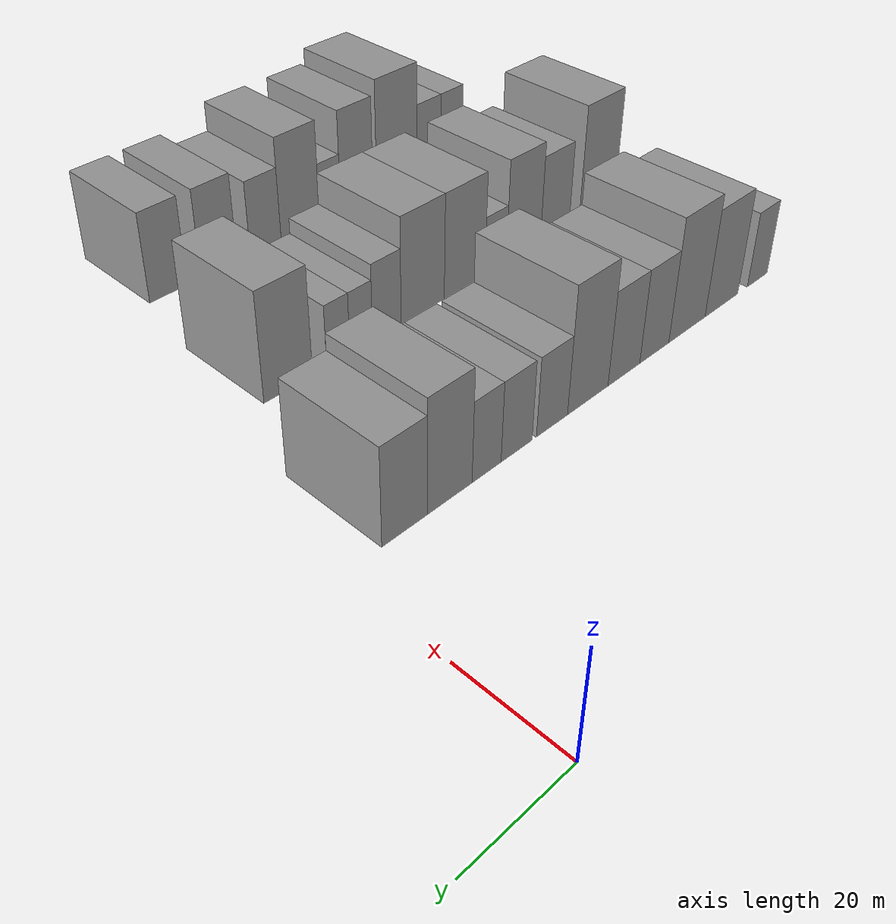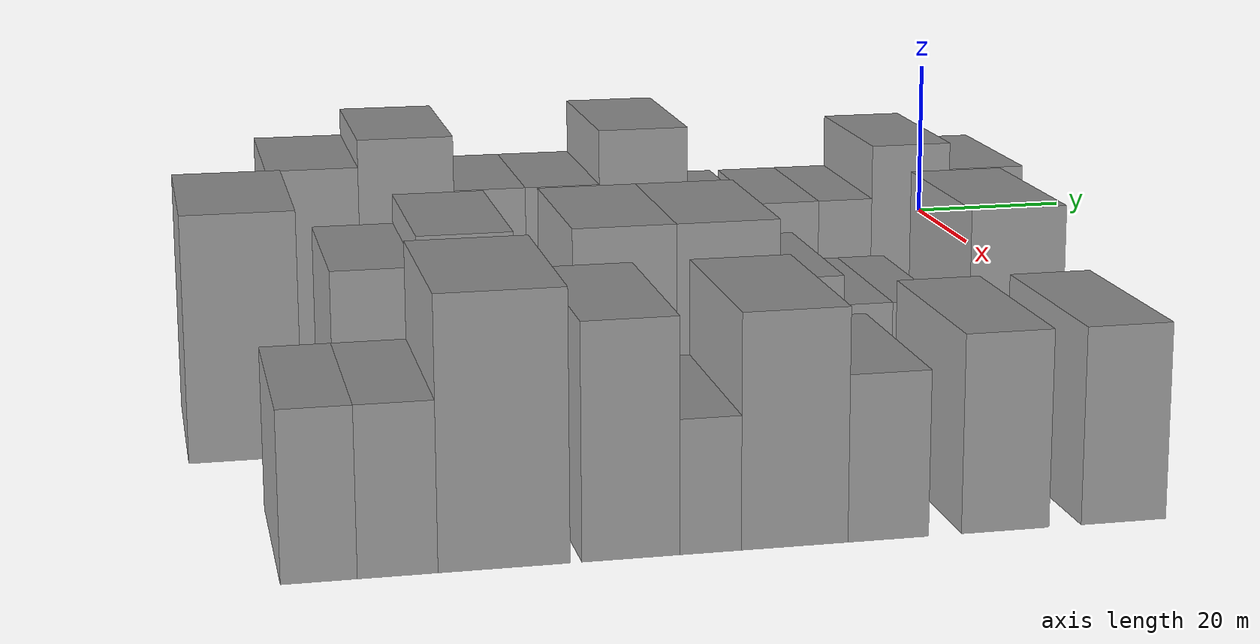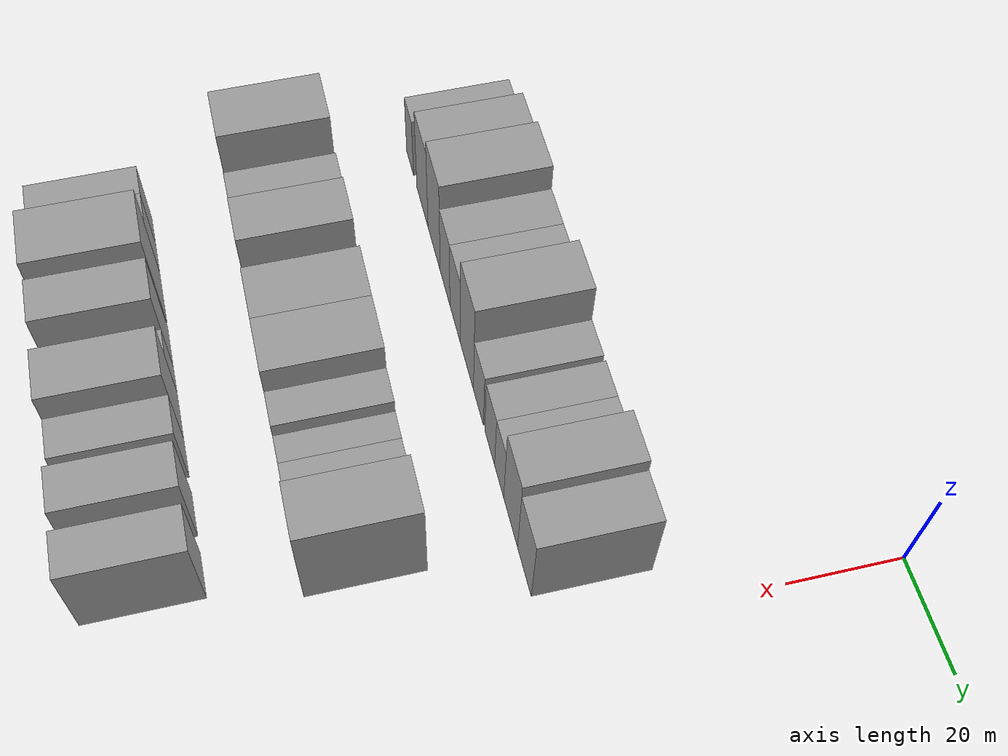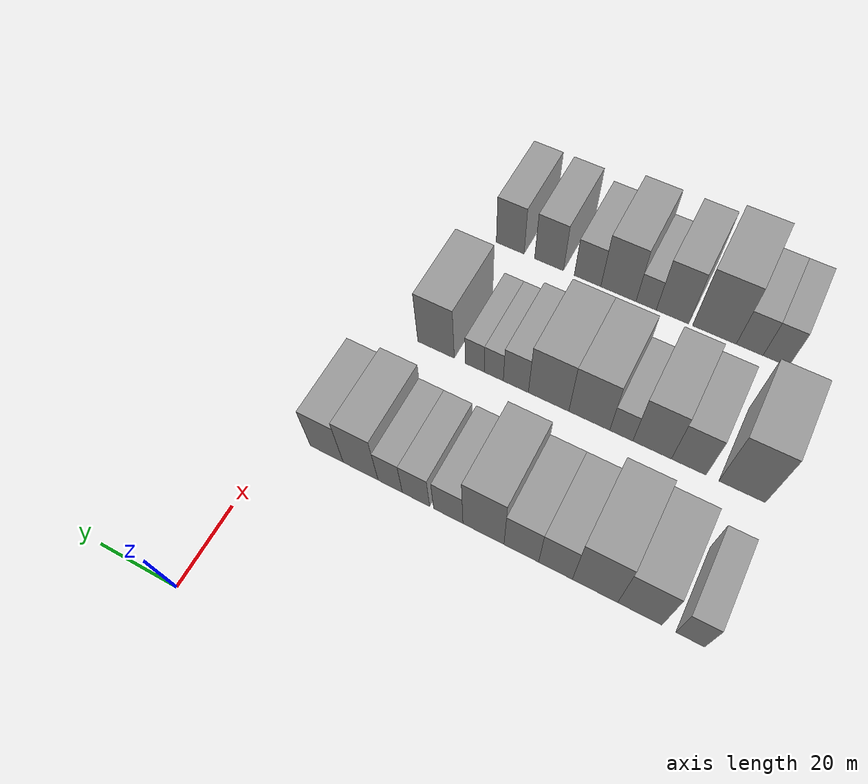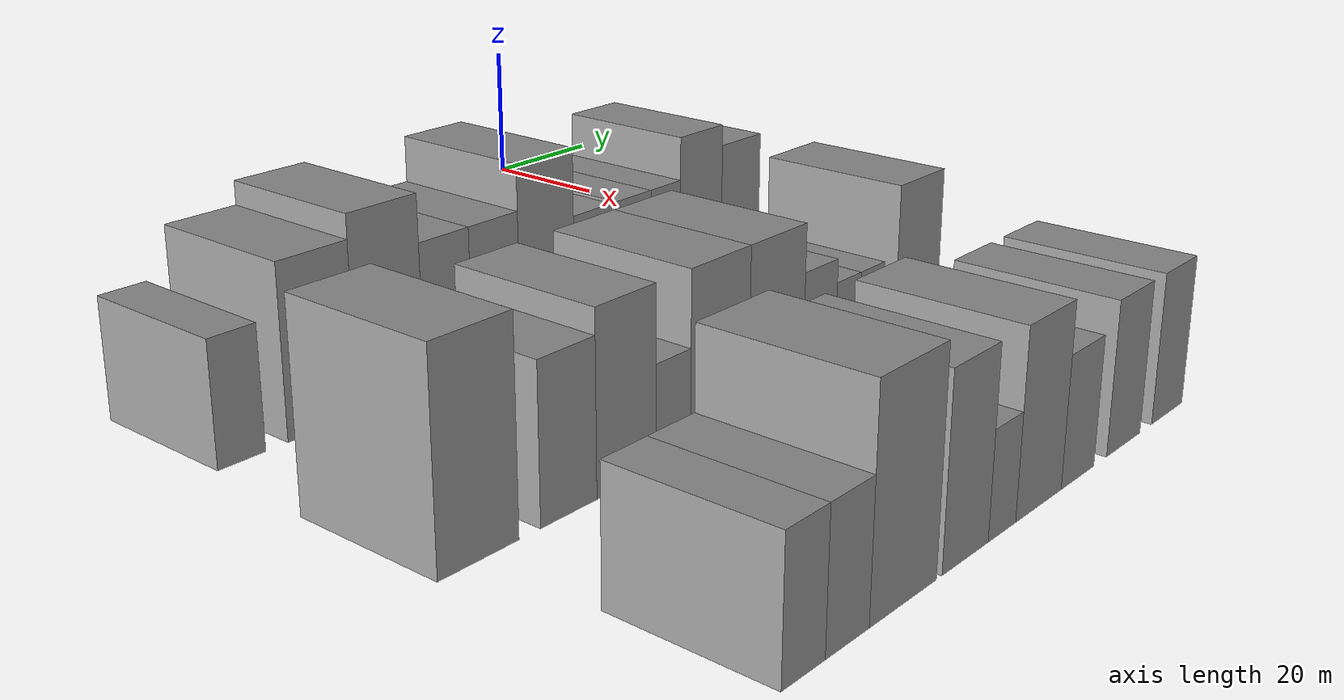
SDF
<sdf version="1.6">
 <world name="default">
  <model name="building_29">
   <static>1</static>
   <pose>50.0000 -98.6793 0 0.000000 0.000000 0.000000</pose>
   <link name="link">
    <pose>0 0 7.50 0 0 0</pose>
    <collision name="collision"><geometry><box><size>20.0000 6.2752 15.0000</size></box></geometry></collision>
    <visual name="visual">
     <cast_shadows>0</cast_shadows>
     <geometry><box><size>20.0000 6.2752 15.0000</size></box></geometry>
     <material>
      <script>
       <uri>model://grey_wall/materials/scripts</uri>
       <uri>model://grey_wall/materials/textures</uri>
       <name>vrc/grey_wall</name>
      </script>
     </material>
    </visual>
   </link>
  </model>
  <model name="building_30">
   <static>1</static>
   <pose>50.0000 -87.6267 0 0.000000 0.000000 0.000000</pose>
   <link name="link">
    <pose>0 0 10.50 0 0 0</pose>
    <collision name="collision"><geometry><box><size>20.0000 9.8299 21.0000</size></box></geometry></collision>
    <visual name="visual">
     <cast_shadows>0</cast_shadows>
     <geometry><box><size>20.0000 9.8299 21.0000</size></box></geometry>
     <material>
      <script>
       <uri>model://grey_wall/materials/scripts</uri>
       <uri>model://grey_wall/materials/textures</uri>
       <name>vrc/grey_wall</name>
      </script>
     </material>
    </visual>
   </link>
  </model>
  <model name="building_31">
   <static>1</static>
   <pose>50.0000 -77.5489 0 0.000000 0.000000 0.000000</pose>
   <link name="link">
    <pose>0 0 12.00 0 0 0</pose>
    <collision name="collision"><geometry><box><size>20.0000 10.3258 24.0000</size></box></geometry></collision>
    <visual name="visual">
     <cast_shadows>0</cast_shadows>
     <geometry><box><size>20.0000 10.3258 24.0000</size></box></geometry>
     <material>
      <script>
       <uri>model://grey_wall/materials/scripts</uri>
       <uri>model://grey_wall/materials/textures</uri>
       <name>vrc/grey_wall</name>
      </script>
     </material>
    </visual>
   </link>
  </model>
  <model name="building_32">
   <static>1</static>
   <pose>50.0000 -68.4582 0 0.000000 0.000000 0.000000</pose>
   <link name="link">
    <pose>0 0 9.00 0 0 0</pose>
    <collision name="collision"><geometry><box><size>20.0000 7.8557 18.0000</size></box></geometry></collision>
    <visual name="visual">
     <cast_shadows>0</cast_shadows>
     <geometry><box><size>20.0000 7.8557 18.0000</size></box></geometry>
     <material>
      <script>
       <uri>model://grey_wall/materials/scripts</uri>
       <uri>model://grey_wall/materials/textures</uri>
       <name>vrc/grey_wall</name>
      </script>
     </material>
    </visual>
   </link>
  </model>
  <model name="building_33">
   <static>1</static>
   <pose>50.0000 -60.4181 0 0.000000 0.000000 0.000000</pose>
   <link name="link">
    <pose>0 0 9.00 0 0 0</pose>
    <collision name="collision"><geometry><box><size>20.0000 8.2246 18.0000</size></box></geometry></collision>
    <visual name="visual">
     <cast_shadows>0</cast_shadows>
     <geometry><box><size>20.0000 8.2246 18.0000</size></box></geometry>
     <material>
      <script>
       <uri>model://grey_wall/materials/scripts</uri>
       <uri>model://grey_wall/materials/textures</uri>
       <name>vrc/grey_wall</name>
      </script>
     </material>
    </visual>
   </link>
  </model>
  <model name="building_34">
   <static>1</static>
   <pose>50.0000 -51.3394 0 0.000000 0.000000 0.000000</pose>
   <link name="link">
    <pose>0 0 12.00 0 0 0</pose>
    <collision name="collision"><geometry><box><size>20.0000 9.9328 24.0000</size></box></geometry></collision>
    <visual name="visual">
     <cast_shadows>0</cast_shadows>
     <geometry><box><size>20.0000 9.9328 24.0000</size></box></geometry>
     <material>
      <script>
       <uri>model://grey_wall/materials/scripts</uri>
       <uri>model://grey_wall/materials/textures</uri>
       <name>vrc/grey_wall</name>
      </script>
     </material>
    </visual>
   </link>
  </model>
  <model name="building_35">
   <static>1</static>
   <pose>50.0000 -42.7556 0 0.000000 0.000000 0.000000</pose>
   <link name="link">
    <pose>0 0 7.50 0 0 0</pose>
    <collision name="collision"><geometry><box><size>20.0000 7.2349 15.0000</size></box></geometry></collision>
    <visual name="visual">
     <cast_shadows>0</cast_shadows>
     <geometry><box><size>20.0000 7.2349 15.0000</size></box></geometry>
     <material>
      <script>
       <uri>model://grey_wall/materials/scripts</uri>
       <uri>model://grey_wall/materials/textures</uri>
       <name>vrc/grey_wall</name>
      </script>
     </material>
    </visual>
   </link>
  </model>
  <model name="building_36">
   <static>1</static>
   <pose>50.0000 -34.6981 0 0.000000 0.000000 0.000000</pose>
   <link name="link">
    <pose>0 0 7.50 0 0 0</pose>
    <collision name="collision"><geometry><box><size>20.0000 6.8800 15.0000</size></box></geometry></collision>
    <visual name="visual">
     <cast_shadows>0</cast_shadows>
     <geometry><box><size>20.0000 6.8800 15.0000</size></box></geometry>
     <material>
      <script>
       <uri>model://grey_wall/materials/scripts</uri>
       <uri>model://grey_wall/materials/textures</uri>
       <name>vrc/grey_wall</name>
      </script>
     </material>
    </visual>
   </link>
  </model>
  <model name="building_37">
   <static>1</static>
   <pose>50.0000 -28.1629 0 0.000000 0.000000 0.000000</pose>
   <link name="link">
    <pose>0 0 7.50 0 0 0</pose>
    <collision name="collision"><geometry><box><size>20.0000 6.1905 15.0000</size></box></geometry></collision>
    <visual name="visual">
     <cast_shadows>0</cast_shadows>
     <geometry><box><size>20.0000 6.1905 15.0000</size></box></geometry>
     <material>
      <script>
       <uri>model://grey_wall/materials/scripts</uri>
       <uri>model://grey_wall/materials/textures</uri>
       <name>vrc/grey_wall</name>
      </script>
     </material>
    </visual>
   </link>
  </model>
  <model name="building_38">
   <static>1</static>
   <pose>50.0000 -20.5236 0 0.000000 0.000000 0.000000</pose>
   <link name="link">
    <pose>0 0 10.50 0 0 0</pose>
    <collision name="collision"><geometry><box><size>20.0000 9.0881 21.0000</size></box></geometry></collision>
    <visual name="visual">
     <cast_shadows>0</cast_shadows>
     <geometry><box><size>20.0000 9.0881 21.0000</size></box></geometry>
     <material>
      <script>
       <uri>model://grey_wall/materials/scripts</uri>
       <uri>model://grey_wall/materials/textures</uri>
       <name>vrc/grey_wall</name>
      </script>
     </material>
    </visual>
   </link>
  </model>
  <model name="building_39">
   <static>1</static>
   <pose>50.0000 -11.6180 0 0.000000 0.000000 0.000000</pose>
   <link name="link">
    <pose>0 0 9.00 0 0 0</pose>
    <collision name="collision"><geometry><box><size>20.0000 8.7230 18.0000</size></box></geometry></collision>
    <visual name="visual">
     <cast_shadows>0</cast_shadows>
     <geometry><box><size>20.0000 8.7230 18.0000</size></box></geometry>
     <material>
      <script>
       <uri>model://grey_wall/materials/scripts</uri>
       <uri>model://grey_wall/materials/textures</uri>
       <name>vrc/grey_wall</name>
      </script>
     </material>
    </visual>
   </link>
  </model>
  <model name="building_109">
   <static>1</static>
   <pose>85.0000 -97.3395 0 0.000000 0.000000 0.000000</pose>
   <link name="link">
    <pose>0 0 12.00 0 0 0</pose>
    <collision name="collision"><geometry><box><size>20.0000 10.7658 24.0000</size></box></geometry></collision>
    <visual name="visual">
     <cast_shadows>0</cast_shadows>
     <geometry><box><size>20.0000 10.7658 24.0000</size></box></geometry>
     <material>
      <script>
       <uri>model://grey_wall/materials/scripts</uri>
       <uri>model://grey_wall/materials/textures</uri>
       <name>vrc/grey_wall</name>
      </script>
     </material>
    </visual>
   </link>
  </model>
  <model name="building_110">
   <static>1</static>
   <pose>85.0000 -84.8275 0 0.000000 0.000000 0.000000</pose>
   <link name="link">
    <pose>0 0 9.00 0 0 0</pose>
    <collision name="collision"><geometry><box><size>20.0000 8.2581 18.0000</size></box></geometry></collision>
    <visual name="visual">
     <cast_shadows>0</cast_shadows>
     <geometry><box><size>20.0000 8.2581 18.0000</size></box></geometry>
     <material>
      <script>
       <uri>model://grey_wall/materials/scripts</uri>
       <uri>model://grey_wall/materials/textures</uri>
       <name>vrc/grey_wall</name>
      </script>
     </material>
    </visual>
   </link>
  </model>
  <model name="building_111">
   <static>1</static>
   <pose>85.0000 -76.0206 0 0.000000 0.000000 0.000000</pose>
   <link name="link">
    <pose>0 0 10.50 0 0 0</pose>
    <collision name="collision"><geometry><box><size>20.0000 9.3557 21.0000</size></box></geometry></collision>
    <visual name="visual">
     <cast_shadows>0</cast_shadows>
     <geometry><box><size>20.0000 9.3557 21.0000</size></box></geometry>
     <material>
      <script>
       <uri>model://grey_wall/materials/scripts</uri>
       <uri>model://grey_wall/materials/textures</uri>
       <name>vrc/grey_wall</name>
      </script>
     </material>
    </visual>
   </link>
  </model>
  <model name="building_112">
   <static>1</static>
   <pose>85.0000 -68.4921 0 0.000000 0.000000 0.000000</pose>
   <link name="link">
    <pose>0 0 6.00 0 0 0</pose>
    <collision name="collision"><geometry><box><size>20.0000 5.7014 12.0000</size></box></geometry></collision>
    <visual name="visual">
     <cast_shadows>0</cast_shadows>
     <geometry><box><size>20.0000 5.7014 12.0000</size></box></geometry>
     <material>
      <script>
       <uri>model://grey_wall/materials/scripts</uri>
       <uri>model://grey_wall/materials/textures</uri>
       <name>vrc/grey_wall</name>
      </script>
     </material>
    </visual>
   </link>
  </model>
  <model name="building_113">
   <static>1</static>
   <pose>85.0000 -60.4939 0 0.000000 0.000000 0.000000</pose>
   <link name="link">
    <pose>0 0 10.50 0 0 0</pose>
    <collision name="collision"><geometry><box><size>20.0000 10.2948 21.0000</size></box></geometry></collision>
    <visual name="visual">
     <cast_shadows>0</cast_shadows>
     <geometry><box><size>20.0000 10.2948 21.0000</size></box></geometry>
     <material>
      <script>
       <uri>model://grey_wall/materials/scripts</uri>
       <uri>model://grey_wall/materials/textures</uri>
       <name>vrc/grey_wall</name>
      </script>
     </material>
    </visual>
   </link>
  </model>
  <model name="building_114">
   <static>1</static>
   <pose>85.0000 -50.1482 0 0.000000 0.000000 0.000000</pose>
   <link name="link">
    <pose>0 0 10.50 0 0 0</pose>
    <collision name="collision"><geometry><box><size>20.0000 10.3967 21.0000</size></box></geometry></collision>
    <visual name="visual">
     <cast_shadows>0</cast_shadows>
     <geometry><box><size>20.0000 10.3967 21.0000</size></box></geometry>
     <material>
      <script>
       <uri>model://grey_wall/materials/scripts</uri>
       <uri>model://grey_wall/materials/textures</uri>
       <name>vrc/grey_wall</name>
      </script>
     </material>
    </visual>
   </link>
  </model>
  <model name="building_115">
   <static>1</static>
   <pose>85.0000 -41.6695 0 0.000000 0.000000 0.000000</pose>
   <link name="link">
    <pose>0 0 7.50 0 0 0</pose>
    <collision name="collision"><geometry><box><size>20.0000 6.5607 15.0000</size></box></geometry></collision>
    <visual name="visual">
     <cast_shadows>0</cast_shadows>
     <geometry><box><size>20.0000 6.5607 15.0000</size></box></geometry>
     <material>
      <script>
       <uri>model://grey_wall/materials/scripts</uri>
       <uri>model://grey_wall/materials/textures</uri>
       <name>vrc/grey_wall</name>
      </script>
     </material>
    </visual>
   </link>
  </model>
  <model name="building_116">
   <static>1</static>
   <pose>85.0000 -35.8572 0 0.000000 0.000000 0.000000</pose>
   <link name="link">
    <pose>0 0 6.00 0 0 0</pose>
    <collision name="collision"><geometry><box><size>20.0000 5.0639 12.0000</size></box></geometry></collision>
    <visual name="visual">
     <cast_shadows>0</cast_shadows>
     <geometry><box><size>20.0000 5.0639 12.0000</size></box></geometry>
     <material>
      <script>
       <uri>model://grey_wall/materials/scripts</uri>
       <uri>model://grey_wall/materials/textures</uri>
       <name>vrc/grey_wall</name>
      </script>
     </material>
    </visual>
   </link>
  </model>
  <model name="building_117">
   <static>1</static>
   <pose>85.0000 -30.8068 0 0.000000 0.000000 0.000000</pose>
   <link name="link">
    <pose>0 0 6.00 0 0 0</pose>
    <collision name="collision"><geometry><box><size>20.0000 5.0368 12.0000</size></box></geometry></collision>
    <visual name="visual">
     <cast_shadows>0</cast_shadows>
     <geometry><box><size>20.0000 5.0368 12.0000</size></box></geometry>
     <material>
      <script>
       <uri>model://grey_wall/materials/scripts</uri>
       <uri>model://grey_wall/materials/textures</uri>
       <name>vrc/grey_wall</name>
      </script>
     </material>
    </visual>
   </link>
  </model>
  <model name="building_118">
   <static>1</static>
   <pose>85.0000 -20.3149 0 0.000000 0.000000 0.000000</pose>
   <link name="link">
    <pose>0 0 10.50 0 0 0</pose>
    <collision name="collision"><geometry><box><size>20.0000 9.9470 21.0000</size></box></geometry></collision>
    <visual name="visual">
     <cast_shadows>0</cast_shadows>
     <geometry><box><size>20.0000 9.9470 21.0000</size></box></geometry>
     <material>
      <script>
       <uri>model://grey_wall/materials/scripts</uri>
       <uri>model://grey_wall/materials/textures</uri>
       <name>vrc/grey_wall</name>
      </script>
     </material>
    </visual>
   </link>
  </model>
  <model name="building_190">
   <static>1</static>
   <pose>120.0000 -93.4246 0 0.000000 0.000000 0.000000</pose>
   <link name="link">
    <pose>0 0 7.50 0 0 0</pose>
    <collision name="collision"><geometry><box><size>20.0000 6.3464 15.0000</size></box></geometry></collision>
    <visual name="visual">
     <cast_shadows>0</cast_shadows>
     <geometry><box><size>20.0000 6.3464 15.0000</size></box></geometry>
     <material>
      <script>
       <uri>model://grey_wall/materials/scripts</uri>
       <uri>model://grey_wall/materials/textures</uri>
       <name>vrc/grey_wall</name>
      </script>
     </material>
    </visual>
   </link>
  </model>
  <model name="building_191">
   <static>1</static>
   <pose>120.0000 -86.8880 0 0.000000 0.000000 0.000000</pose>
   <link name="link">
    <pose>0 0 7.50 0 0 0</pose>
    <collision name="collision"><geometry><box><size>20.0000 6.7267 15.0000</size></box></geometry></collision>
    <visual name="visual">
     <cast_shadows>0</cast_shadows>
     <geometry><box><size>20.0000 6.7267 15.0000</size></box></geometry>
     <material>
      <script>
       <uri>model://grey_wall/materials/scripts</uri>
       <uri>model://grey_wall/materials/textures</uri>
       <name>vrc/grey_wall</name>
      </script>
     </material>
    </visual>
   </link>
  </model>
  <model name="building_192">
   <static>1</static>
   <pose>120.0000 -77.9191 0 0.000000 0.000000 0.000000</pose>
   <link name="link">
    <pose>0 0 12.00 0 0 0</pose>
    <collision name="collision"><geometry><box><size>20.0000 11.2111 24.0000</size></box></geometry></collision>
    <visual name="visual">
     <cast_shadows>0</cast_shadows>
     <geometry><box><size>20.0000 11.2111 24.0000</size></box></geometry>
     <material>
      <script>
       <uri>model://grey_wall/materials/scripts</uri>
       <uri>model://grey_wall/materials/textures</uri>
       <name>vrc/grey_wall</name>
      </script>
     </material>
    </visual>
   </link>
  </model>
  <model name="building_193">
   <static>1</static>
   <pose>120.0000 -67.0645 0 0.000000 0.000000 0.000000</pose>
   <link name="link">
    <pose>0 0 10.50 0 0 0</pose>
    <collision name="collision"><geometry><box><size>20.0000 8.4981 21.0000</size></box></geometry></collision>
    <visual name="visual">
     <cast_shadows>0</cast_shadows>
     <geometry><box><size>20.0000 8.4981 21.0000</size></box></geometry>
     <material>
      <script>
       <uri>model://grey_wall/materials/scripts</uri>
       <uri>model://grey_wall/materials/textures</uri>
       <name>vrc/grey_wall</name>
      </script>
     </material>
    </visual>
   </link>
  </model>
  <model name="building_194">
   <static>1</static>
   <pose>120.0000 -60.1288 0 0.000000 0.000000 0.000000</pose>
   <link name="link">
    <pose>0 0 6.00 0 0 0</pose>
    <collision name="collision"><geometry><box><size>20.0000 5.3735 12.0000</size></box></geometry></collision>
    <visual name="visual">
     <cast_shadows>0</cast_shadows>
     <geometry><box><size>20.0000 5.3735 12.0000</size></box></geometry>
     <material>
      <script>
       <uri>model://grey_wall/materials/scripts</uri>
       <uri>model://grey_wall/materials/textures</uri>
       <name>vrc/grey_wall</name>
      </script>
     </material>
    </visual>
   </link>
  </model>
  <model name="building_195">
   <static>1</static>
   <pose>120.0000 -52.6913 0 0.000000 0.000000 0.000000</pose>
   <link name="link">
    <pose>0 0 10.50 0 0 0</pose>
    <collision name="collision"><geometry><box><size>20.0000 9.5014 21.0000</size></box></geometry></collision>
    <visual name="visual">
     <cast_shadows>0</cast_shadows>
     <geometry><box><size>20.0000 9.5014 21.0000</size></box></geometry>
     <material>
      <script>
       <uri>model://grey_wall/materials/scripts</uri>
       <uri>model://grey_wall/materials/textures</uri>
       <name>vrc/grey_wall</name>
      </script>
     </material>
    </visual>
   </link>
  </model>
  <model name="building_196">
   <static>1</static>
   <pose>120.0000 -44.3000 0 0.000000 0.000000 0.000000</pose>
   <link name="link">
    <pose>0 0 7.50 0 0 0</pose>
    <collision name="collision"><geometry><box><size>20.0000 7.2813 15.0000</size></box></geometry></collision>
    <visual name="visual">
     <cast_shadows>0</cast_shadows>
     <geometry><box><size>20.0000 7.2813 15.0000</size></box></geometry>
     <material>
      <script>
       <uri>model://grey_wall/materials/scripts</uri>
       <uri>model://grey_wall/materials/textures</uri>
       <name>vrc/grey_wall</name>
      </script>
     </material>
    </visual>
   </link>
  </model>
  <model name="building_197">
   <static>1</static>
   <pose>120.0000 -33.6221 0 0.000000 0.000000 0.000000</pose>
   <link name="link">
    <pose>0 0 9.00 0 0 0</pose>
    <collision name="collision"><geometry><box><size>20.0000 8.0746 18.0000</size></box></geometry></collision>
    <visual name="visual">
     <cast_shadows>0</cast_shadows>
     <geometry><box><size>20.0000 8.0746 18.0000</size></box></geometry>
     <material>
      <script>
       <uri>model://grey_wall/materials/scripts</uri>
       <uri>model://grey_wall/materials/textures</uri>
       <name>vrc/grey_wall</name>
      </script>
     </material>
    </visual>
   </link>
  </model>
  <model name="building_198">
   <static>1</static>
   <pose>120.0000 -22.6116 0 0.000000 0.000000 0.000000</pose>
   <link name="link">
    <pose>0 0 9.00 0 0 0</pose>
    <collision name="collision"><geometry><box><size>20.0000 7.9462 18.0000</size></box></geometry></collision>
    <visual name="visual">
     <cast_shadows>0</cast_shadows>
     <geometry><box><size>20.0000 7.9462 18.0000</size></box></geometry>
     <material>
      <script>
       <uri>model://grey_wall/materials/scripts</uri>
       <uri>model://grey_wall/materials/textures</uri>
       <name>vrc/grey_wall</name>
      </script>
     </material>
    </visual>
   </link>
  </model>
 </world>
</sdf>
